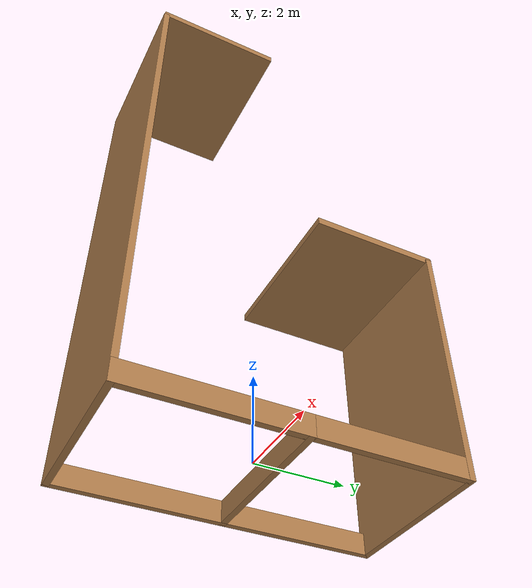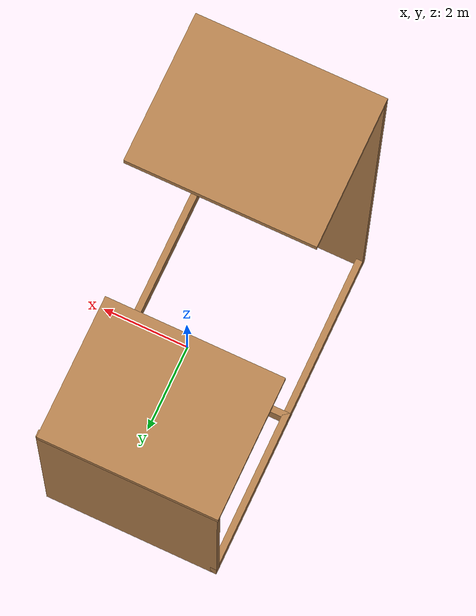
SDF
<?xml version='1.0'?>
<sdf version='1.6'>
  <model name='house'>
    <pose frame=''>-0.665617 0.435676 0 0 -0 0</pose>
    <link name='Wall_119'>
      <collision name='Wall_119_Collision'>
        <geometry>
          <box>
            <size>4.00047 0.15 6</size>
          </box>
        </geometry>
        <pose frame=''>0 0 3 0 -0 0</pose>
      </collision>
      <visual name='Wall_119_Visual'>
        <pose frame=''>0 0 3 0 -0 0</pose>
        <geometry>
          <box>
            <size>4.00047 0.15 6</size>
          </box>
        </geometry>
        <material>
          <script>
            <uri>file://media/materials/scripts/gazebo.material</uri>
            <name>Gazebo/Wood</name>
          </script>
          <ambient>1 1 1 1</ambient>
        </material>
        <meta>
          <layer>0</layer>
        </meta>
      </visual>
      <pose frame=''>-0.000383 3.72832 0 0 -0 0</pose>
    </link>
  <link name='Wall_43'>
      <pose frame=''>-0.036045 2.22823 0 0 -0 0.000117</pose>
      <self_collide>1</self_collide>
      <enable_wind>0</enable_wind>
      <kinematic>0</kinematic>
      <gravity>1</gravity>
      <inertial>
        <mass>0.33717</mass>
        <pose frame=''>0 0 0 0 -0 0</pose>
        <inertia>
          <ixx>0.289156</ixx>
          <ixy>0</ixy>
          <ixz>0</ixz>
          <iyy>0.450568</iyy>
          <iyz>0</iyz>
          <izz>0.737709</izz>
        </inertia>
      </inertial>
      <visual name='Wall_43_Visual'>
        <pose frame=''>0 0 6 0 -0 0</pose>
        <geometry>
          <box>
            <size>4 3.20239 0.189335</size>
          </box>
        </geometry>
        <material>
          <script>
            <uri>file://media/materials/scripts/gazebo.material</uri>
            <name>Gazebo/Wood</name>
          </script>
          <ambient>1 1 1 1</ambient>
          <shader type='vertex'>
            <normal_map>__default__</normal_map>
          </shader>
          <diffuse>1 1 1 1</diffuse>
          <specular>0.2 0.2 0.2 1</specular>
          <emissive>0 0 0 1</emissive>
        </material>
        <meta>
          <layer>0</layer>
        </meta>
        <transparency>0</transparency>
        <cast_shadows>1</cast_shadows>
      </visual>
      <collision name='Wall_43_Collision'>
        <laser_retro>0</laser_retro>
        <max_contacts>10</max_contacts>
        <pose frame=''>0 0 6 0 -0 0</pose>
        <geometry>
          <box>
            <size>4 3.20239 0.189335</size>
          </box>
        </geometry>
        <surface>
          <friction>
            <ode>
              <mu>1</mu>
              <mu2>1</mu2>
              <fdir1>0 0 0</fdir1>
              <slip1>0</slip1>
              <slip2>0</slip2>
            </ode>
            <torsional>
              <coefficient>1</coefficient>
              <patch_radius>0</patch_radius>
              <surface_radius>0</surface_radius>
              <use_patch_radius>1</use_patch_radius>
              <ode>
                <slip>0</slip>
              </ode>
            </torsional>
          </friction>
          <bounce>
            <restitution_coefficient>0</restitution_coefficient>
            <threshold>1e+06</threshold>
          </bounce>
          <contact>
            <collide_without_contact>0</collide_without_contact>
            <collide_without_contact_bitmask>1</collide_without_contact_bitmask>
            <collide_bitmask>1</collide_bitmask>
            <ode>
              <soft_cfm>0</soft_cfm>
              <soft_erp>0.2</soft_erp>
              <kp>1e+13</kp>
              <kd>1</kd>
              <max_vel>0.01</max_vel>
              <min_depth>0</min_depth>
            </ode>
            <bullet>
              <split_impulse>1</split_impulse>
              <split_impulse_penetration_threshold>-0.01</split_impulse_penetration_threshold>
              <soft_cfm>0</soft_cfm>
              <soft_erp>0.2</soft_erp>
              <kp>1e+13</kp>
              <kd>1</kd>
            </bullet>
          </contact>
        </surface>
      </collision>
    </link>
    <link name='Wall_23'>
      <collision name='Wall_23_Collision'>
        <geometry>
          <box>
            <size>4 0.15 12</size>
          </box>
        </geometry>
        <pose frame=''>0 0 6 0 -0 0</pose>
      </collision>
      <visual name='Wall_23_Visual'>
        <pose frame=''>0 0 6 0 -0 0</pose>
        <geometry>
          <box>
            <size>4 0.15 12</size>
          </box>
        </geometry>
        <material>
          <script>
            <uri>file://media/materials/scripts/gazebo.material</uri>
            <name>Gazebo/Wood</name>
          </script>
          <ambient>1 1 1 1</ambient>
        </material>
        <meta>
          <layer>0</layer>
        </meta>
      </visual>
      <pose frame=''>-0.000383 -3.72809 0 0 -0 0.000117</pose>
    </link>
    <link name='Wall_233'>
      <collision name='Wall_233_Collision'>
        <geometry>
           <box>
            <size>4 3.20239 0.189335</size>
          </box>
        </geometry>
        <pose frame=''>0 0 6 0 -0 0</pose>
      </collision>
      <visual name='Wall_233_Visual'>
        <pose frame=''>0 1.55 12 0 -0 0</pose>
        <geometry>
           <box>
            <size>4 3.20239 0.189335</size>
          </box>
        </geometry>
        <material>
          <script>
            <uri>file://media/materials/scripts/gazebo.material</uri>
            <name>Gazebo/Wood</name>
          </script>
          <ambient>1 1 1 1</ambient>
        </material>
        <meta>
          <layer>0</layer>
        </meta>
      </visual>
      <pose frame=''>-0.000383 -3.72809 0 0 -0 0.000117</pose>
    </link>

    <link name='Wall_28'>
      <collision name='Wall_28_Collision'>
        <geometry>
          <box>
            <size>3.75 0.15 0.5</size>
          </box>
        </geometry>
        <pose frame=''>0 0 0.25 0 -0 0</pose>
      </collision>
      <visual name='Wall_28_Visual'>
        <pose frame=''>0 0 0.25 0 -0 0</pose>
        <geometry>
          <box>
            <size>3.75 0.15 0.5</size>
          </box>
        </geometry>
        <material>
          <script>
            <uri>file://media/materials/scripts/gazebo.material</uri>
            <name>Gazebo/Wood</name>
          </script>
          <ambient>1 1 1 1</ambient>
        </material>
        <meta>
          <layer>0</layer>
        </meta>
      </visual>
      <pose frame=''>1.92462 1.86832 0 0 -0 -1.5708</pose>
    </link>
    <link name='Wall_38'>
      <collision name='Wall_38_Collision'>
        <geometry>
          <box>
            <size>4 0.15 0.5</size>
          </box>
        </geometry>
        <pose frame=''>0 0 0.25 0 -0 0</pose>
      </collision>
      <visual name='Wall_38_Visual'>
        <pose frame=''>0 0 0.25 0 -0 0</pose>
        <geometry>
          <box>
            <size>4 0.15 0.5</size>
          </box>
        </geometry>
        <material>
          <script>
            <uri>file://media/materials/scripts/gazebo.material</uri>
            <name>Gazebo/Wood</name>
          </script>
          <ambient>1 1 1 1</ambient>
        </material>
        <meta>
          <layer>0</layer>
        </meta>
      </visual>
      <pose frame=''>1.92562 -1.79568 0 0 -0 1.5708</pose>
    </link>
    <link name='Wall_49'>
      <collision name='Wall_49_Collision'>
        <geometry>
          <box>
            <size>3.99341 0.15 0.5</size>
          </box>
        </geometry>
        <pose frame=''>0 0 0.25 0 -0 0</pose>
      </collision>
      <visual name='Wall_49_Visual'>
        <pose frame=''>0 0 0.25 0 -0 0</pose>
        <geometry>
          <box>
            <size>3.99341 0.15 0.5</size>
          </box>
        </geometry>
        <material>
          <script>
            <uri>file://media/materials/scripts/gazebo.material</uri>
            <name>Gazebo/Wood</name>
          </script>
          <ambient>1 1 1 1</ambient>
        </material>
        <meta>
          <layer>0</layer>
        </meta>
      </visual>
      <pose frame=''>-1.92538 -1.79338 0 0 -0 1.5708</pose>
    </link>
    <link name='Wall_50'>
      <collision name='Wall_50_Collision'>
        <geometry>
          <box>
            <size>4 0.15 0.5</size>
          </box>
        </geometry>
        <pose frame=''>0 0 0.25 0 -0 0</pose>
      </collision>
      <visual name='Wall_50_Visual'>
        <pose frame=''>0 0 0.25 0 -0 0</pose>
        <geometry>
          <box>
            <size>4 0.15 0.5</size>
          </box>
        </geometry>
        <material>
          <script>
            <uri>file://media/materials/scripts/gazebo.material</uri>
            <name>Gazebo/Wood</name>
          </script>
          <ambient>1 1 1 1</ambient>
        </material>
        <meta>
          <layer>0</layer>
        </meta>
      </visual>
      <pose frame=''>-0.000383 0.128324 0 0 -0 0</pose>
    </link>
    <link name='Wall_52'>
      <collision name='Wall_52_Collision'>
        <geometry>
          <box>
            <size>3.75 0.15 0.5</size>
          </box>
        </geometry>
        <pose frame=''>0 0 0.25 0 -0 0</pose>
      </collision>
      <visual name='Wall_52_Visual'>
        <pose frame=''>0 0 0.25 0 -0 0</pose>
        <geometry>
          <box>
            <size>3.75 0.15 0.5</size>
          </box>
        </geometry>
        <material>
          <script>
            <uri>file://media/materials/scripts/gazebo.material</uri>
            <name>Gazebo/Wood</name>
          </script>
          <ambient>1 1 1 1</ambient>
        </material>
        <meta>
          <layer>0</layer>
        </meta>
      </visual>
      <pose frame=''>-1.92538 1.92832 0 0 -0 -1.5708</pose>
    </link>
    <static>1</static>
  </model>
</sdf>
